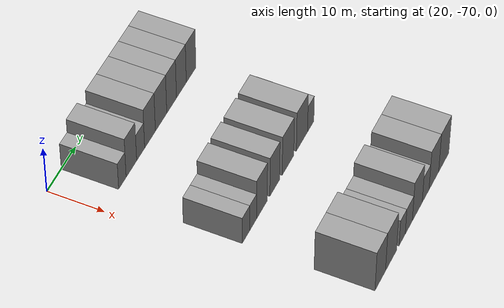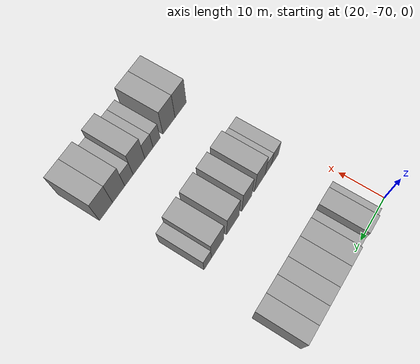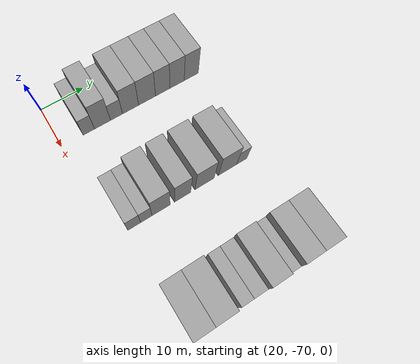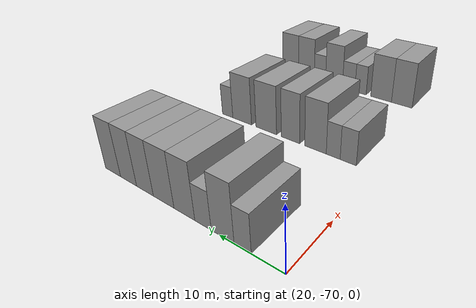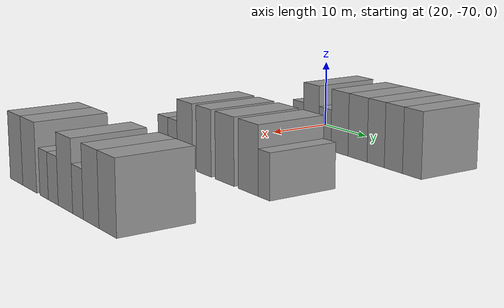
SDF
<sdf version="1.6">
 <world name="default">
  <model name="building_49">
   <static>1</static>
   <pose>25.0000 -63.7254 0 0.000000 0.000000 0.000000</pose>
   <link name="link">
    <pose>0 0 3.00 0 0 0</pose>
    <collision name="collision"><geometry><box><size>10.0000 2.6452 6.0000</size></box></geometry></collision>
    <visual name="visual">
     <cast_shadows>0</cast_shadows>
     <geometry><box><size>10.0000 2.6452 6.0000</size></box></geometry>
     <material>
      <script>
       <uri>model://grey_wall/materials/scripts</uri>
       <uri>model://grey_wall/materials/textures</uri>
       <name>vrc/grey_wall</name>
      </script>
     </material>
    </visual>
   </link>
  </model>
  <model name="building_50">
   <static>1</static>
   <pose>25.0000 -60.5292 0 0.000000 0.000000 0.000000</pose>
   <link name="link">
    <pose>0 0 4.50 0 0 0</pose>
    <collision name="collision"><geometry><box><size>10.0000 3.7474 9.0000</size></box></geometry></collision>
    <visual name="visual">
     <cast_shadows>0</cast_shadows>
     <geometry><box><size>10.0000 3.7474 9.0000</size></box></geometry>
     <material>
      <script>
       <uri>model://grey_wall/materials/scripts</uri>
       <uri>model://grey_wall/materials/textures</uri>
       <name>vrc/grey_wall</name>
      </script>
     </material>
    </visual>
   </link>
  </model>
  <model name="building_51">
   <static>1</static>
   <pose>25.0000 -57.2158 0 0.000000 0.000000 0.000000</pose>
   <link name="link">
    <pose>0 0 3.00 0 0 0</pose>
    <collision name="collision"><geometry><box><size>10.0000 2.8793 6.0000</size></box></geometry></collision>
    <visual name="visual">
     <cast_shadows>0</cast_shadows>
     <geometry><box><size>10.0000 2.8793 6.0000</size></box></geometry>
     <material>
      <script>
       <uri>model://grey_wall/materials/scripts</uri>
       <uri>model://grey_wall/materials/textures</uri>
       <name>vrc/grey_wall</name>
      </script>
     </material>
    </visual>
   </link>
  </model>
  <model name="building_52">
   <static>1</static>
   <pose>25.0000 -53.8270 0 0.000000 0.000000 0.000000</pose>
   <link name="link">
    <pose>0 0 4.50 0 0 0</pose>
    <collision name="collision"><geometry><box><size>10.0000 3.8983 9.0000</size></box></geometry></collision>
    <visual name="visual">
     <cast_shadows>0</cast_shadows>
     <geometry><box><size>10.0000 3.8983 9.0000</size></box></geometry>
     <material>
      <script>
       <uri>model://grey_wall/materials/scripts</uri>
       <uri>model://grey_wall/materials/textures</uri>
       <name>vrc/grey_wall</name>
      </script>
     </material>
    </visual>
   </link>
  </model>
  <model name="building_53">
   <static>1</static>
   <pose>25.0000 -49.7944 0 0.000000 0.000000 0.000000</pose>
   <link name="link">
    <pose>0 0 4.50 0 0 0</pose>
    <collision name="collision"><geometry><box><size>10.0000 4.1670 9.0000</size></box></geometry></collision>
    <visual name="visual">
     <cast_shadows>0</cast_shadows>
     <geometry><box><size>10.0000 4.1670 9.0000</size></box></geometry>
     <material>
      <script>
       <uri>model://grey_wall/materials/scripts</uri>
       <uri>model://grey_wall/materials/textures</uri>
       <name>vrc/grey_wall</name>
      </script>
     </material>
    </visual>
   </link>
  </model>
  <model name="building_54">
   <static>1</static>
   <pose>25.0000 -45.9077 0 0.000000 0.000000 0.000000</pose>
   <link name="link">
    <pose>0 0 4.50 0 0 0</pose>
    <collision name="collision"><geometry><box><size>10.0000 3.6064 9.0000</size></box></geometry></collision>
    <visual name="visual">
     <cast_shadows>0</cast_shadows>
     <geometry><box><size>10.0000 3.6064 9.0000</size></box></geometry>
     <material>
      <script>
       <uri>model://grey_wall/materials/scripts</uri>
       <uri>model://grey_wall/materials/textures</uri>
       <name>vrc/grey_wall</name>
      </script>
     </material>
    </visual>
   </link>
  </model>
  <model name="building_55">
   <static>1</static>
   <pose>25.0000 -42.2686 0 0.000000 0.000000 0.000000</pose>
   <link name="link">
    <pose>0 0 4.50 0 0 0</pose>
    <collision name="collision"><geometry><box><size>10.0000 3.6719 9.0000</size></box></geometry></collision>
    <visual name="visual">
     <cast_shadows>0</cast_shadows>
     <geometry><box><size>10.0000 3.6719 9.0000</size></box></geometry>
     <material>
      <script>
       <uri>model://grey_wall/materials/scripts</uri>
       <uri>model://grey_wall/materials/textures</uri>
       <name>vrc/grey_wall</name>
      </script>
     </material>
    </visual>
   </link>
  </model>
  <model name="building_56">
   <static>1</static>
   <pose>25.0000 -38.6117 0 0.000000 0.000000 0.000000</pose>
   <link name="link">
    <pose>0 0 4.50 0 0 0</pose>
    <collision name="collision"><geometry><box><size>10.0000 3.6418 9.0000</size></box></geometry></collision>
    <visual name="visual">
     <cast_shadows>0</cast_shadows>
     <geometry><box><size>10.0000 3.6418 9.0000</size></box></geometry>
     <material>
      <script>
       <uri>model://grey_wall/materials/scripts</uri>
       <uri>model://grey_wall/materials/textures</uri>
       <name>vrc/grey_wall</name>
      </script>
     </material>
    </visual>
   </link>
  </model>
  <model name="building_172">
   <static>1</static>
   <pose>47.0000 -65.5592 0 0.000000 0.000000 0.000000</pose>
   <link name="link">
    <pose>0 0 3.00 0 0 0</pose>
    <collision name="collision"><geometry><box><size>10.0000 2.7746 6.0000</size></box></geometry></collision>
    <visual name="visual">
     <cast_shadows>0</cast_shadows>
     <geometry><box><size>10.0000 2.7746 6.0000</size></box></geometry>
     <material>
      <script>
       <uri>model://grey_wall/materials/scripts</uri>
       <uri>model://grey_wall/materials/textures</uri>
       <name>vrc/grey_wall</name>
      </script>
     </material>
    </visual>
   </link>
  </model>
  <model name="building_173">
   <static>1</static>
   <pose>47.0000 -62.9297 0 0.000000 0.000000 0.000000</pose>
   <link name="link">
    <pose>0 0 3.00 0 0 0</pose>
    <collision name="collision"><geometry><box><size>10.0000 2.4844 6.0000</size></box></geometry></collision>
    <visual name="visual">
     <cast_shadows>0</cast_shadows>
     <geometry><box><size>10.0000 2.4844 6.0000</size></box></geometry>
     <material>
      <script>
       <uri>model://grey_wall/materials/scripts</uri>
       <uri>model://grey_wall/materials/textures</uri>
       <name>vrc/grey_wall</name>
      </script>
     </material>
    </visual>
   </link>
  </model>
  <model name="building_174">
   <static>1</static>
   <pose>47.0000 -59.6638 0 0.000000 0.000000 0.000000</pose>
   <link name="link">
    <pose>0 0 4.50 0 0 0</pose>
    <collision name="collision"><geometry><box><size>10.0000 4.0475 9.0000</size></box></geometry></collision>
    <visual name="visual">
     <cast_shadows>0</cast_shadows>
     <geometry><box><size>10.0000 4.0475 9.0000</size></box></geometry>
     <material>
      <script>
       <uri>model://grey_wall/materials/scripts</uri>
       <uri>model://grey_wall/materials/textures</uri>
       <name>vrc/grey_wall</name>
      </script>
     </material>
    </visual>
   </link>
  </model>
  <model name="building_175">
   <static>1</static>
   <pose>47.0000 -54.7906 0 0.000000 0.000000 0.000000</pose>
   <link name="link">
    <pose>0 0 4.50 0 0 0</pose>
    <collision name="collision"><geometry><box><size>10.0000 3.6987 9.0000</size></box></geometry></collision>
    <visual name="visual">
     <cast_shadows>0</cast_shadows>
     <geometry><box><size>10.0000 3.6987 9.0000</size></box></geometry>
     <material>
      <script>
       <uri>model://grey_wall/materials/scripts</uri>
       <uri>model://grey_wall/materials/textures</uri>
       <name>vrc/grey_wall</name>
      </script>
     </material>
    </visual>
   </link>
  </model>
  <model name="building_176">
   <static>1</static>
   <pose>47.0000 -49.7025 0 0.000000 0.000000 0.000000</pose>
   <link name="link">
    <pose>0 0 4.50 0 0 0</pose>
    <collision name="collision"><geometry><box><size>10.0000 4.4777 9.0000</size></box></geometry></collision>
    <visual name="visual">
     <cast_shadows>0</cast_shadows>
     <geometry><box><size>10.0000 4.4777 9.0000</size></box></geometry>
     <material>
      <script>
       <uri>model://grey_wall/materials/scripts</uri>
       <uri>model://grey_wall/materials/textures</uri>
       <name>vrc/grey_wall</name>
      </script>
     </material>
    </visual>
   </link>
  </model>
  <model name="building_177">
   <static>1</static>
   <pose>47.0000 -44.2681 0 0.000000 0.000000 0.000000</pose>
   <link name="link">
    <pose>0 0 4.50 0 0 0</pose>
    <collision name="collision"><geometry><box><size>10.0000 4.3910 9.0000</size></box></geometry></collision>
    <visual name="visual">
     <cast_shadows>0</cast_shadows>
     <geometry><box><size>10.0000 4.3910 9.0000</size></box></geometry>
     <material>
      <script>
       <uri>model://grey_wall/materials/scripts</uri>
       <uri>model://grey_wall/materials/textures</uri>
       <name>vrc/grey_wall</name>
      </script>
     </material>
    </visual>
   </link>
  </model>
  <model name="building_178">
   <static>1</static>
   <pose>47.0000 -40.8148 0 0.000000 0.000000 0.000000</pose>
   <link name="link">
    <pose>0 0 3.00 0 0 0</pose>
    <collision name="collision"><geometry><box><size>10.0000 2.5156 6.0000</size></box></geometry></collision>
    <visual name="visual">
     <cast_shadows>0</cast_shadows>
     <geometry><box><size>10.0000 2.5156 6.0000</size></box></geometry>
     <material>
      <script>
       <uri>model://grey_wall/materials/scripts</uri>
       <uri>model://grey_wall/materials/textures</uri>
       <name>vrc/grey_wall</name>
      </script>
     </material>
    </visual>
   </link>
  </model>
  <model name="building_287">
   <static>1</static>
   <pose>69.0000 -64.9528 0 0.000000 0.000000 0.000000</pose>
   <link name="link">
    <pose>0 0 4.50 0 0 0</pose>
    <collision name="collision"><geometry><box><size>10.0000 4.1400 9.0000</size></box></geometry></collision>
    <visual name="visual">
     <cast_shadows>0</cast_shadows>
     <geometry><box><size>10.0000 4.1400 9.0000</size></box></geometry>
     <material>
      <script>
       <uri>model://grey_wall/materials/scripts</uri>
       <uri>model://grey_wall/materials/textures</uri>
       <name>vrc/grey_wall</name>
      </script>
     </material>
    </visual>
   </link>
  </model>
  <model name="building_288">
   <static>1</static>
   <pose>69.0000 -60.6937 0 0.000000 0.000000 0.000000</pose>
   <link name="link">
    <pose>0 0 4.50 0 0 0</pose>
    <collision name="collision"><geometry><box><size>10.0000 4.3783 9.0000</size></box></geometry></collision>
    <visual name="visual">
     <cast_shadows>0</cast_shadows>
     <geometry><box><size>10.0000 4.3783 9.0000</size></box></geometry>
     <material>
      <script>
       <uri>model://grey_wall/materials/scripts</uri>
       <uri>model://grey_wall/materials/textures</uri>
       <name>vrc/grey_wall</name>
      </script>
     </material>
    </visual>
   </link>
  </model>
  <model name="building_289">
   <static>1</static>
   <pose>69.0000 -56.2453 0 0.000000 0.000000 0.000000</pose>
   <link name="link">
    <pose>0 0 3.00 0 0 0</pose>
    <collision name="collision"><geometry><box><size>10.0000 2.5184 6.0000</size></box></geometry></collision>
    <visual name="visual">
     <cast_shadows>0</cast_shadows>
     <geometry><box><size>10.0000 2.5184 6.0000</size></box></geometry>
     <material>
      <script>
       <uri>model://grey_wall/materials/scripts</uri>
       <uri>model://grey_wall/materials/textures</uri>
       <name>vrc/grey_wall</name>
      </script>
     </material>
    </visual>
   </link>
  </model>
  <model name="building_290">
   <static>1</static>
   <pose>69.0000 -53.5535 0 0.000000 0.000000 0.000000</pose>
   <link name="link">
    <pose>0 0 3.00 0 0 0</pose>
    <collision name="collision"><geometry><box><size>10.0000 2.8653 6.0000</size></box></geometry></collision>
    <visual name="visual">
     <cast_shadows>0</cast_shadows>
     <geometry><box><size>10.0000 2.8653 6.0000</size></box></geometry>
     <material>
      <script>
       <uri>model://grey_wall/materials/scripts</uri>
       <uri>model://grey_wall/materials/textures</uri>
       <name>vrc/grey_wall</name>
      </script>
     </material>
    </visual>
   </link>
  </model>
  <model name="building_291">
   <static>1</static>
   <pose>69.0000 -50.0944 0 0.000000 0.000000 0.000000</pose>
   <link name="link">
    <pose>0 0 4.50 0 0 0</pose>
    <collision name="collision"><geometry><box><size>10.0000 4.0529 9.0000</size></box></geometry></collision>
    <visual name="visual">
     <cast_shadows>0</cast_shadows>
     <geometry><box><size>10.0000 4.0529 9.0000</size></box></geometry>
     <material>
      <script>
       <uri>model://grey_wall/materials/scripts</uri>
       <uri>model://grey_wall/materials/textures</uri>
       <name>vrc/grey_wall</name>
      </script>
     </material>
    </visual>
   </link>
  </model>
  <model name="building_292">
   <static>1</static>
   <pose>69.0000 -46.6629 0 0.000000 0.000000 0.000000</pose>
   <link name="link">
    <pose>0 0 3.00 0 0 0</pose>
    <collision name="collision"><geometry><box><size>10.0000 2.8102 6.0000</size></box></geometry></collision>
    <visual name="visual">
     <cast_shadows>0</cast_shadows>
     <geometry><box><size>10.0000 2.8102 6.0000</size></box></geometry>
     <material>
      <script>
       <uri>model://grey_wall/materials/scripts</uri>
       <uri>model://grey_wall/materials/textures</uri>
       <name>vrc/grey_wall</name>
      </script>
     </material>
    </visual>
   </link>
  </model>
  <model name="building_293">
   <static>1</static>
   <pose>69.0000 -43.2406 0 0.000000 0.000000 0.000000</pose>
   <link name="link">
    <pose>0 0 4.50 0 0 0</pose>
    <collision name="collision"><geometry><box><size>10.0000 4.0343 9.0000</size></box></geometry></collision>
    <visual name="visual">
     <cast_shadows>0</cast_shadows>
     <geometry><box><size>10.0000 4.0343 9.0000</size></box></geometry>
     <material>
      <script>
       <uri>model://grey_wall/materials/scripts</uri>
       <uri>model://grey_wall/materials/textures</uri>
       <name>vrc/grey_wall</name>
      </script>
     </material>
    </visual>
   </link>
  </model>
  <model name="building_294">
   <static>1</static>
   <pose>69.0000 -39.0983 0 0.000000 0.000000 0.000000</pose>
   <link name="link">
    <pose>0 0 4.50 0 0 0</pose>
    <collision name="collision"><geometry><box><size>10.0000 4.2503 9.0000</size></box></geometry></collision>
    <visual name="visual">
     <cast_shadows>0</cast_shadows>
     <geometry><box><size>10.0000 4.2503 9.0000</size></box></geometry>
     <material>
      <script>
       <uri>model://grey_wall/materials/scripts</uri>
       <uri>model://grey_wall/materials/textures</uri>
       <name>vrc/grey_wall</name>
      </script>
     </material>
    </visual>
   </link>
  </model>
 </world>
</sdf>
